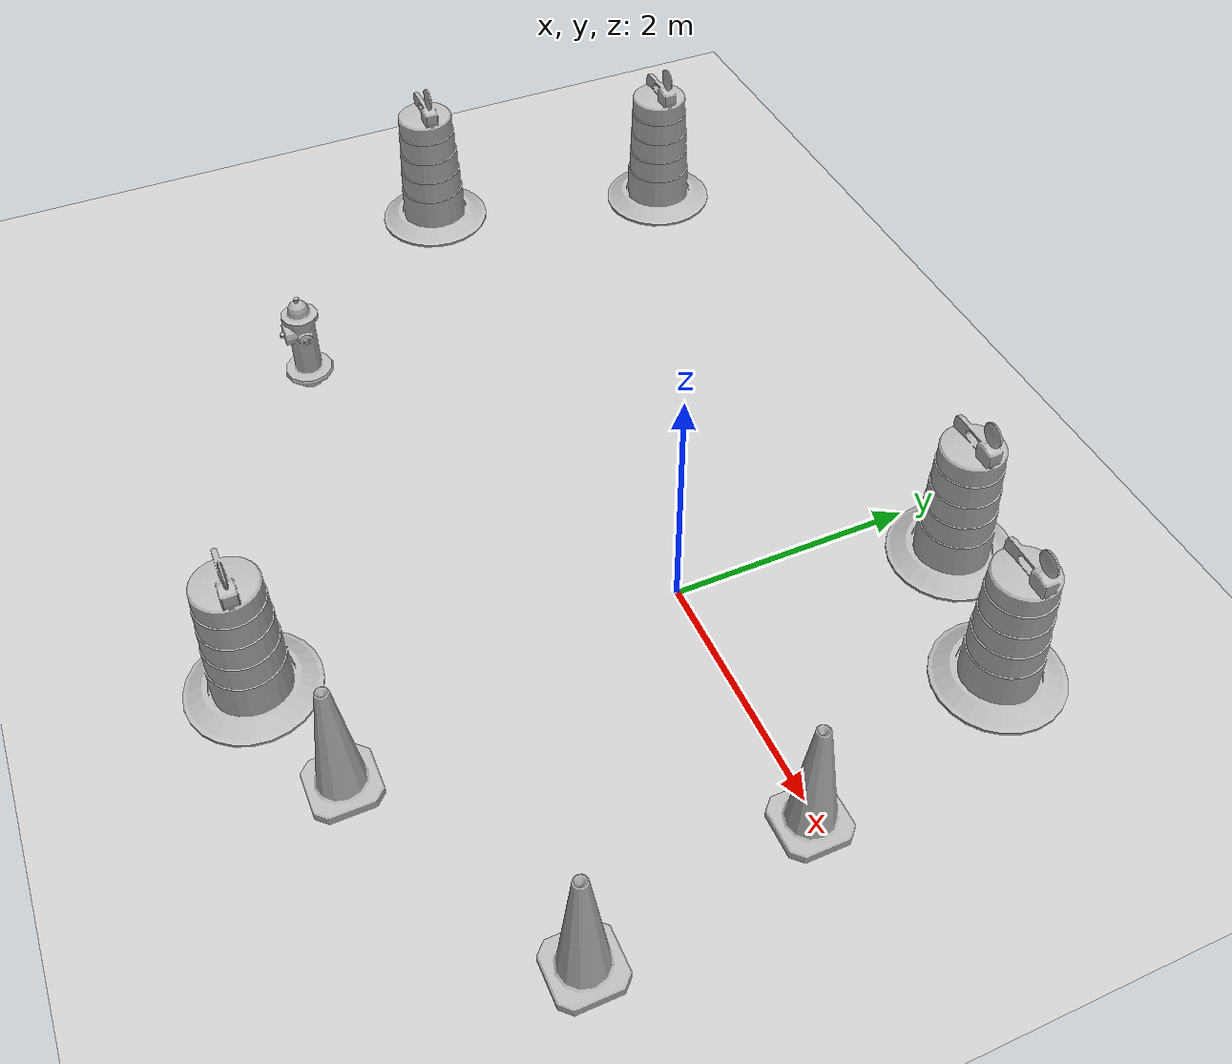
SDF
<sdf version="1.7">
 <world name="default">
  <light name="sun" type="directional">
   <pose>0 0 10 0 -0 0</pose>
   <diffuse>0.8 0.8 0.8 1</diffuse>
   <specular>0.2 0.2 0.2 1</specular>
   <attenuation>
    <range>1000</range>
    <constant>0.9</constant>
    <linear>0.01</linear>
    <quadratic>0.001</quadratic>
   </attenuation>
   <direction>-0.5 0.1 -0.9</direction>
   <spot><inner_angle>0</inner_angle><outer_angle>0</outer_angle><falloff>0</falloff></spot>
  </light>
  <model name="ground_plane">
   <static>1</static>
   <link name="link">
    <collision name="collision">
     <geometry><plane><normal>0 0 1</normal><size>100 100</size></plane></geometry>
     <surface><friction><ode><mu>100</mu><mu2>50</mu2></ode></friction></surface>
    </collision>
    <visual name="visual">
     <cast_shadows>0</cast_shadows>
     <geometry><plane><normal>0 0 1</normal><size>100 100</size></plane></geometry>
     <material>
      <script><uri>file://media/materials/scripts/gazebo.material</uri><name>Gazebo/Grey</name></script>
     </material>
    </visual>
   </link>
  </model>
  <gravity>0 0 -9.8</gravity>
  <magnetic_field>6e-06 2.3e-05 -4.2e-05</magnetic_field>
  <atmosphere type="adiabatic"/>
  <physics type="ode">
   <max_step_size>0.001</max_step_size>
   <real_time_factor>1</real_time_factor>
   <real_time_update_rate>1000</real_time_update_rate>
  </physics>
  <scene><ambient>0.4 0.4 0.4 1</ambient><background>0.7 0.7 0.7 1</background><shadows>1</shadows></scene>
  <audio><device>default</device></audio>
  <spherical_coordinates>
   <surface_model>EARTH_WGS84</surface_model>
   <latitude_deg>0</latitude_deg>
   <longitude_deg>0</longitude_deg>
   <elevation>0</elevation>
   <heading_deg>0</heading_deg>
  </spherical_coordinates>
  <model name="Construction Barrel">
   <link name="link">
    <inertial>
     <pose>0 0 0.4 0 -0 0</pose>
     <mass>500</mass>
     <inertia><ixx>51.2096</ixx><iyy>51.2096</iyy><izz>25</izz><ixy>0</ixy><ixz>0</ixz><iyz>0</iyz></inertia>
    </inertial>
    <collision name="collision">
     <geometry><mesh><uri>model://construction_barrel/meshes/construction_barrel.dae</uri></mesh></geometry>
    </collision>
    <visual name="visual">
     <geometry><mesh><uri>model://construction_barrel/meshes/construction_barrel.dae</uri></mesh></geometry>
    </visual>
   </link>
   <pose>0.514523 2.14057 -1e-06 3e-06 7e-06 -1.5e-05</pose>
  </model>
  <model name="Construction Barrel_0">
   <link name="link">
    <inertial>
     <pose>0 0 0.4 0 -0 0</pose>
     <mass>500</mass>
     <inertia><ixx>51.2096</ixx><iyy>51.2096</iyy><izz>25</izz><ixy>0</ixy><ixz>0</ixz><iyz>0</iyz></inertia>
    </inertial>
    <collision name="collision">
     <geometry><mesh><uri>model://construction_barrel/meshes/construction_barrel.dae</uri></mesh></geometry>
    </collision>
    <visual name="visual">
     <geometry><mesh><uri>model://construction_barrel/meshes/construction_barrel.dae</uri></mesh></geometry>
    </visual>
   </link>
   <pose>1.6763 1.79071 0 0 0 -1.5e-05</pose>
  </model>
  <model name="Construction Cone">
   <link name="link">
    <collision name="collision">
     <geometry>
      <mesh><scale>10 10 10</scale><uri>model://construction_cone/meshes/construction_cone.dae</uri></mesh>
     </geometry>
    </collision>
    <visual name="visual">
     <geometry>
      <mesh><scale>10 10 10</scale><uri>model://construction_cone/meshes/construction_cone.dae</uri></mesh>
     </geometry>
    </visual>
    <inertial>
     <inertia><ixx>1</ixx><ixy>0</ixy><ixz>0</ixz><iyy>1</iyy><iyz>0</iyz><izz>1</izz></inertia>
     <mass>1</mass>
    </inertial>
   </link>
   <pose>2.1681 -0.054216 -1e-06 4e-06 -0 0</pose>
  </model>
  <model name="Construction Barrel_1">
   <link name="link">
    <inertial>
     <pose>0 0 0.4 0 -0 0</pose>
     <mass>500</mass>
     <inertia><ixx>51.2096</ixx><iyy>51.2096</iyy><izz>25</izz><ixy>0</ixy><ixz>0</ixz><iyz>0</iyz></inertia>
    </inertial>
    <collision name="collision">
     <geometry><mesh><uri>model://construction_barrel/meshes/construction_barrel.dae</uri></mesh></geometry>
    </collision>
    <visual name="visual">
     <geometry><mesh><uri>model://construction_barrel/meshes/construction_barrel.dae</uri></mesh></geometry>
    </visual>
   </link>
   <pose>-5.37465 -0.124179 -1e-06 0 5e-06 -1e-05</pose>
  </model>
  <model name="Construction Barrel_2">
   <link name="link">
    <inertial>
     <pose>0 0 0.4 0 -0 0</pose>
     <mass>500</mass>
     <inertia><ixx>51.2096</ixx><iyy>51.2096</iyy><izz>25</izz><ixy>0</ixy><ixz>0</ixz><iyz>0</iyz></inertia>
    </inertial>
    <collision name="collision">
     <geometry><mesh><uri>model://construction_barrel/meshes/construction_barrel.dae</uri></mesh></geometry>
    </collision>
    <visual name="visual">
     <geometry><mesh><uri>model://construction_barrel/meshes/construction_barrel.dae</uri></mesh></geometry>
    </visual>
   </link>
   <pose>-4.76917 2.05803 -2e-06 -0 7e-06 -8e-06</pose>
  </model>
  <model name="fire_hydrant">
   <static>1</static>
   <link name="link">
    <collision name="collision">
     <geometry><mesh><uri>model://fire_hydrant/meshes/fire_hydrant.dae</uri></mesh></geometry>
    </collision>
    <visual name="visual">
     <geometry><mesh><uri>model://fire_hydrant/meshes/fire_hydrant.dae</uri></mesh></geometry>
    </visual>
   </link>
   <pose>-3.51976 -1.9163 0 0 -0 0</pose>
  </model>
  <model name="Construction Cone_0">
   <link name="link">
    <collision name="collision">
     <geometry>
      <mesh><scale>10 10 10</scale><uri>model://construction_cone/meshes/construction_cone.dae</uri></mesh>
     </geometry>
    </collision>
    <visual name="visual">
     <geometry>
      <mesh><scale>10 10 10</scale><uri>model://construction_cone/meshes/construction_cone.dae</uri></mesh>
     </geometry>
    </visual>
    <inertial>
     <inertia><ixx>1</ixx><ixy>0</ixy><ixz>0</ixz><iyy>1</iyy><iyz>0</iyz><izz>1</izz></inertia>
     <mass>1</mass>
    </inertial>
   </link>
   <pose>0.600561 -2.84005 -5e-06 -4e-06 1e-06 0</pose>
  </model>
  <model name="Construction Barrel_3">
   <link name="link">
    <inertial>
     <pose>0 0 0.4 0 -0 0</pose>
     <mass>500</mass>
     <inertia><ixx>51.2096</ixx><iyy>51.2096</iyy><izz>25</izz><ixy>0</ixy><ixz>0</ixz><iyz>0</iyz></inertia>
    </inertial>
    <collision name="collision">
     <geometry><mesh><uri>model://construction_barrel/meshes/construction_barrel.dae</uri></mesh></geometry>
    </collision>
    <visual name="visual">
     <geometry><mesh><uri>model://construction_barrel/meshes/construction_barrel.dae</uri></mesh></geometry>
    </visual>
   </link>
   <pose>-0.459934 -3.19805 0 0 0 -3e-06</pose>
  </model>
  <model name="Construction Cone_1">
   <link name="link">
    <collision name="collision">
     <geometry>
      <mesh><scale>10 10 10</scale><uri>model://construction_cone/meshes/construction_cone.dae</uri></mesh>
     </geometry>
    </collision>
    <visual name="visual">
     <geometry>
      <mesh><scale>10 10 10</scale><uri>model://construction_cone/meshes/construction_cone.dae</uri></mesh>
     </geometry>
    </visual>
    <inertial>
     <inertia><ixx>1</ixx><ixy>0</ixy><ixz>0</ixz><iyy>1</iyy><iyz>0</iyz><izz>1</izz></inertia>
     <mass>1</mass>
    </inertial>
   </link>
   <pose>2.48674 -1.8407 -0 0 -1e-06 0</pose>
  </model>
 </world>
</sdf>
